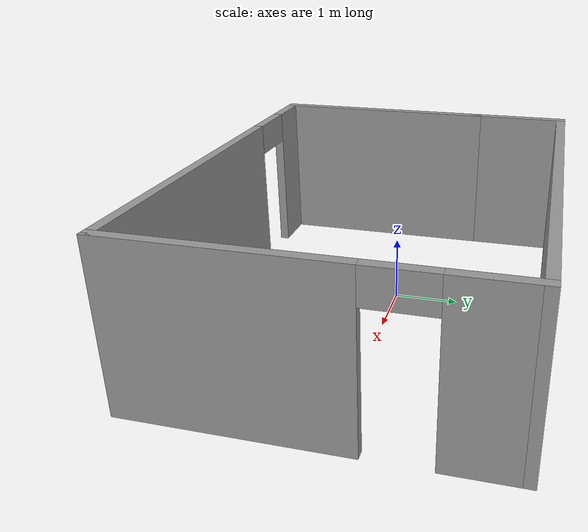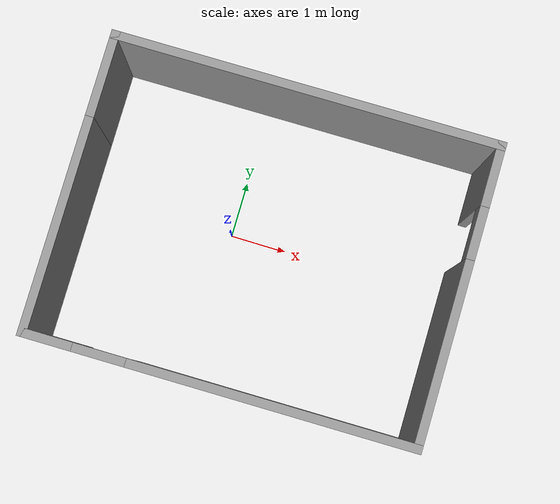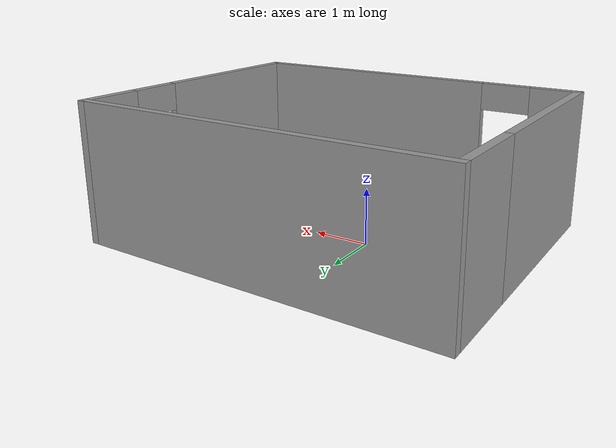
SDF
<?xml version='1.0'?>
<sdf version='1.7'>
  <model name='new_world'>
    <pose>0.648665 -0.149364 0 0 -0 0</pose>
    <link name='Wall_10'>
      <collision name='Wall_10_Collision'>
        <geometry>
          <box>
            <size>1.65 0.15 2.5</size>
          </box>
        </geometry>
        <pose>0 0 1.25 0 -0 0</pose>
      </collision>
      <visual name='Wall_10_Visual'>
        <pose>0 0 1.25 0 -0 0</pose>
        <geometry>
          <box>
            <size>1.65 0.15 2.5</size>
          </box>
        </geometry>
        <material>
          <script>
            <uri>file://media/materials/scripts/gazebo.material</uri>
            <name>Gazebo/Grey</name>
          </script>
          <ambient>1 1 1 1</ambient>
        </material>
        <meta>
          <layer>0</layer>
        </meta>
      </visual>
      <pose>-3.3 1.8 0 0 -0 -1.5708</pose>
    </link>
    <link name='Wall_6'>
      <collision name='Wall_6_Collision'>
        <geometry>
          <box>
            <size>3.75 0.15 2.5</size>
          </box>
        </geometry>
        <pose>0 0 1.25 0 -0 0</pose>
      </collision>
      <visual name='Wall_6_Visual'>
        <pose>0 0 1.25 0 -0 0</pose>
        <geometry>
          <box>
            <size>3.75 0.15 2.5</size>
          </box>
        </geometry>
        <material>
          <script>
            <uri>file://media/materials/scripts/gazebo.material</uri>
            <name>Gazebo/Grey</name>
          </script>
          <ambient>1 1 1 1</ambient>
        </material>
        <meta>
          <layer>0</layer>
        </meta>
      </visual>
      <pose>-3.3 -0.75 0 0 -0 -1.5708</pose>
    </link>
    <link name='Wall_7'>
      <pose>-0 -2.55 0 0 -0 0</pose>
      <visual name='Wall_7_Visual_0'>
        <pose>-2.92043 0 1.25 0 -0 0</pose>
        <geometry>
          <box>
            <size>0.909129 0.15 2.5</size>
          </box>
        </geometry>
        <material>
          <script>
            <uri>file://media/materials/scripts/gazebo.material</uri>
            <name>Gazebo/Grey</name>
          </script>
          <ambient>1 1 1 1</ambient>
        </material>
        <meta>
          <layer>0</layer>
        </meta>
      </visual>
      <collision name='Wall_7_Collision_0'>
        <geometry>
          <box>
            <size>0.909129 0.15 2.5</size>
          </box>
        </geometry>
        <pose>-2.92043 0 1.25 0 -0 0</pose>
      </collision>
      <visual name='Wall_7_Visual_1'>
        <pose>0.904565 0 1.25 0 -0 0</pose>
        <geometry>
          <box>
            <size>4.94087 0.15 2.5</size>
          </box>
        </geometry>
        <material>
          <script>
            <uri>file://media/materials/scripts/gazebo.material</uri>
            <name>Gazebo/Grey</name>
          </script>
          <ambient>1 1 1 1</ambient>
        </material>
        <meta>
          <layer>0</layer>
        </meta>
      </visual>
      <collision name='Wall_7_Collision_1'>
        <geometry>
          <box>
            <size>4.94087 0.15 2.5</size>
          </box>
        </geometry>
        <pose>0.904565 0 1.25 0 -0 0</pose>
      </collision>
      <visual name='Wall_7_Visual_2'>
        <pose>-2.01587 0 2.25 0 -0 0</pose>
        <geometry>
          <box>
            <size>0.9 0.15 0.5</size>
          </box>
        </geometry>
        <material>
          <script>
            <uri>file://media/materials/scripts/gazebo.material</uri>
            <name>Gazebo/Grey</name>
          </script>
          <ambient>1 1 1 1</ambient>
        </material>
        <meta>
          <layer>0</layer>
        </meta>
      </visual>
      <collision name='Wall_7_Collision_2'>
        <geometry>
          <box>
            <size>0.9 0.15 0.5</size>
          </box>
        </geometry>
        <pose>-2.01587 0 2.25 0 -0 0</pose>
      </collision>
    </link>
    <link name='Wall_8'>
      <pose>3.3 0 0 0 -0 1.5708</pose>
      <visual name='Wall_8_Visual_0'>
        <pose>-1.01131 0 1.25 0 -0 0</pose>
        <geometry>
          <box>
            <size>3.22738 0.15 2.5</size>
          </box>
        </geometry>
        <material>
          <script>
            <uri>file://media/materials/scripts/gazebo.material</uri>
            <name>Gazebo/Grey</name>
          </script>
          <ambient>1 1 1 1</ambient>
        </material>
        <meta>
          <layer>0</layer>
        </meta>
      </visual>
      <collision name='Wall_8_Collision_0'>
        <geometry>
          <box>
            <size>3.22738 0.15 2.5</size>
          </box>
        </geometry>
        <pose>-1.01131 0 1.25 0 -0 0</pose>
      </collision>
      <visual name='Wall_8_Visual_1'>
        <pose>2.06369 0 1.25 0 -0 0</pose>
        <geometry>
          <box>
            <size>1.12262 0.15 2.5</size>
          </box>
        </geometry>
        <material>
          <script>
            <uri>file://media/materials/scripts/gazebo.material</uri>
            <name>Gazebo/Grey</name>
          </script>
          <ambient>1 1 1 1</ambient>
        </material>
        <meta>
          <layer>0</layer>
        </meta>
      </visual>
      <collision name='Wall_8_Collision_1'>
        <geometry>
          <box>
            <size>1.12262 0.15 2.5</size>
          </box>
        </geometry>
        <pose>2.06369 0 1.25 0 -0 0</pose>
      </collision>
      <visual name='Wall_8_Visual_2'>
        <pose>1.05238 0 2.25 0 -0 0</pose>
        <geometry>
          <box>
            <size>0.9 0.15 0.5</size>
          </box>
        </geometry>
        <material>
          <script>
            <uri>file://media/materials/scripts/gazebo.material</uri>
            <name>Gazebo/Grey</name>
          </script>
          <ambient>1 1 1 1</ambient>
        </material>
        <meta>
          <layer>0</layer>
        </meta>
      </visual>
      <collision name='Wall_8_Collision_2'>
        <geometry>
          <box>
            <size>0.9 0.15 0.5</size>
          </box>
        </geometry>
        <pose>1.05238 0 2.25 0 -0 0</pose>
      </collision>
    </link>
    <link name='Wall_9'>
      <collision name='Wall_9_Collision'>
        <geometry>
          <box>
            <size>6.75 0.15 2.5</size>
          </box>
        </geometry>
        <pose>0 0 1.25 0 -0 0</pose>
      </collision>
      <visual name='Wall_9_Visual'>
        <pose>0 0 1.25 0 -0 0</pose>
        <geometry>
          <box>
            <size>6.75 0.15 2.5</size>
          </box>
        </geometry>
        <material>
          <script>
            <uri>file://media/materials/scripts/gazebo.material</uri>
            <name>Gazebo/Grey</name>
          </script>
          <ambient>1 1 1 1</ambient>
        </material>
        <meta>
          <layer>0</layer>
        </meta>
      </visual>
      <pose>-0 2.55 0 0 -0 3.14159</pose>
    </link>
    <static>1</static>
  </model>
</sdf>
